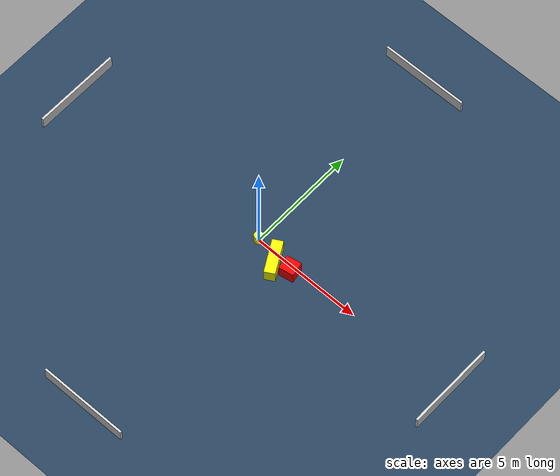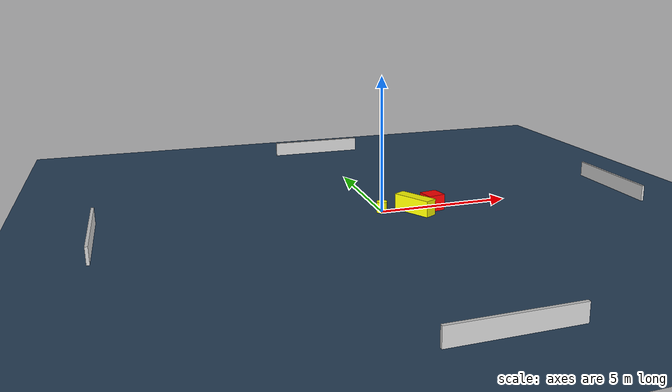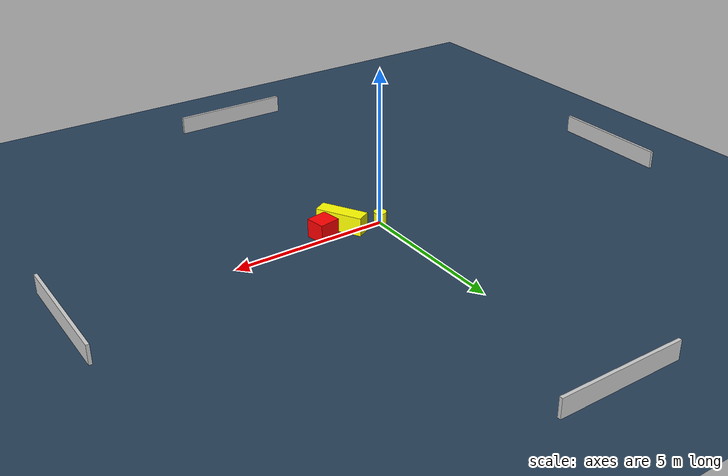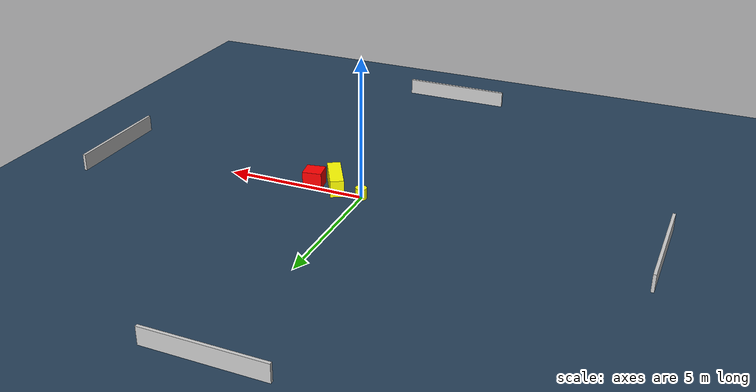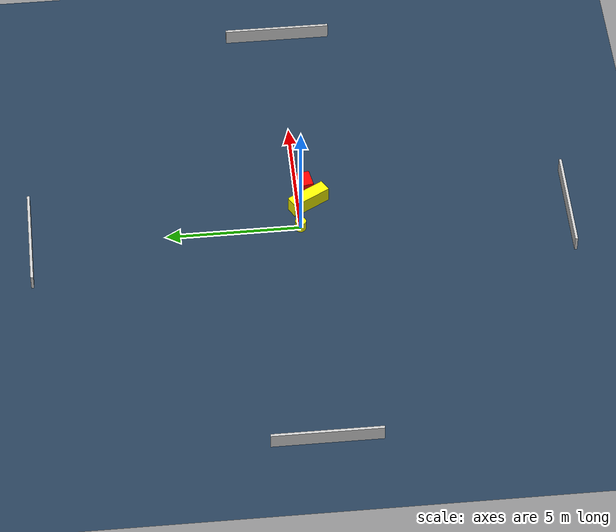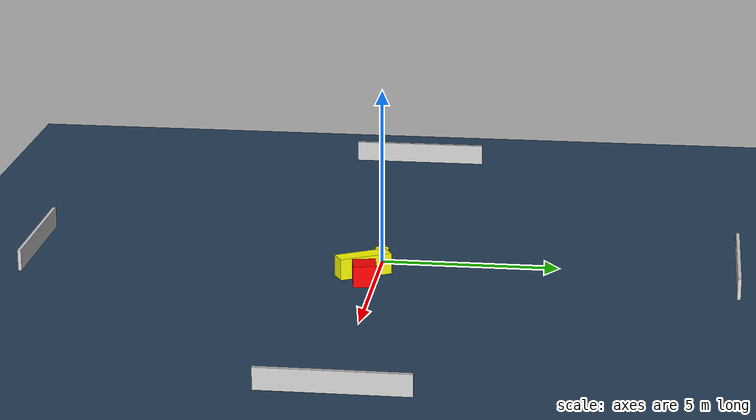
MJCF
<?xml version="1.0" ?>
<mujoco model="generated_environment">
  <option timestep="0.01" integrator="RK4" cone="elliptic"/>
  <default>
    <geom density="1"/>
  </default>
  <asset>
    <texture builtin="gradient" height="3072" name="skybox" rgb1="0.3 0.5 0.7" rgb2="0 0 0" type="skybox" width="512"/>
    <texture builtin="checker" height="300" name="groundplane" rgb1="0.2 0.3 0.4" rgb2="0.1 0.2 0.3" type="2d" width="300"/>
    <material name="groundplane" reflectance="0.2" texrepeat="5 5" texture="groundplane"/>
  </asset>
  <worldbody>
    <light dir="0 0 -1" directional="true" pos="0 0 1.5"/>
    <geom condim="3" friction="0.5 0.005 0.001" material="groundplane" name="floor" pos="0 0 0" size="0 0 0.05" type="plane"/>
    <body name="walls">
      <geom name="wall_1" condim="4" pos="-10.0 0.0 0.3" rgba="0.800000011920929 0.800000011920929 0.800000011920929 1.0" size="0.05 2.0 0.3" type="box"/>
      <geom name="wall_2" condim="4" pos="10.0 0.0 0.3" rgba="0.800000011920929 0.800000011920929 0.800000011920929 1.0" size="0.05 2.0 0.3" type="box"/>
      <geom name="wall_3" condim="4" pos="0.0 -10.0 0.3" rgba="0.800000011920929 0.800000011920929 0.800000011920929 1.0" size="2.0 0.05 0.3" type="box"/>
      <geom name="wall_4" condim="4" pos="0.0 10.0 0.3" rgba="0.800000011920929 0.800000011920929 0.800000011920929 1.0" size="2.0 0.05 0.3" type="box"/>
    </body>
    <body name="robot">
      <joint name="joint_x" type="slide" pos="0 0 0" axis="1 0 0"/>
      <joint name="joint_y" type="slide" pos="0 0 0" axis="0 1 0"/>
      <geom name="robot" type="cylinder" pos="0.0 0.0 0.2" size="0.2 0.2 0.0" mass="5.0" friction="1.0 0.005 0.0001" condim="4" rgba="1.0 1.0 0.0 1.0"/>
    </body>
    <body name="obstacle_1_movable">
      <geom name="obstacle_1_movable" condim="4" pos="1.1534540092262684 -0.3956939059650357 0.3" euler="0 0 209.4562668823525" friction="0.0 0.005 0.001" rgba="1.0 1.0 0.0 1.0" size="0.23683775712574728 0.7626909077274187 0.3" type="box" mass="0.1"/>
      <joint type="free"/>
    </body>
    <body name="obstacle_2_static">
      <geom name="obstacle_2_static" condim="4" pos="1.9041105656688808 -0.2607231980236404 0.3" euler="0 0 279.9752659270592" friction="0.0 0.005 0.001" rgba="1.0 0.0 0.0 1.0" size="0.32099260661099666 0.3354373141655744 0.3" type="box"/>
    </body>
  </worldbody>
  <actuator>
    <motor name="actuator_x" joint="joint_x" gear="1" ctrlrange="-1 1"/>
    <motor name="actuator_y" joint="joint_y" gear="1" ctrlrange="-1 1"/>
  </actuator>
</mujoco>
